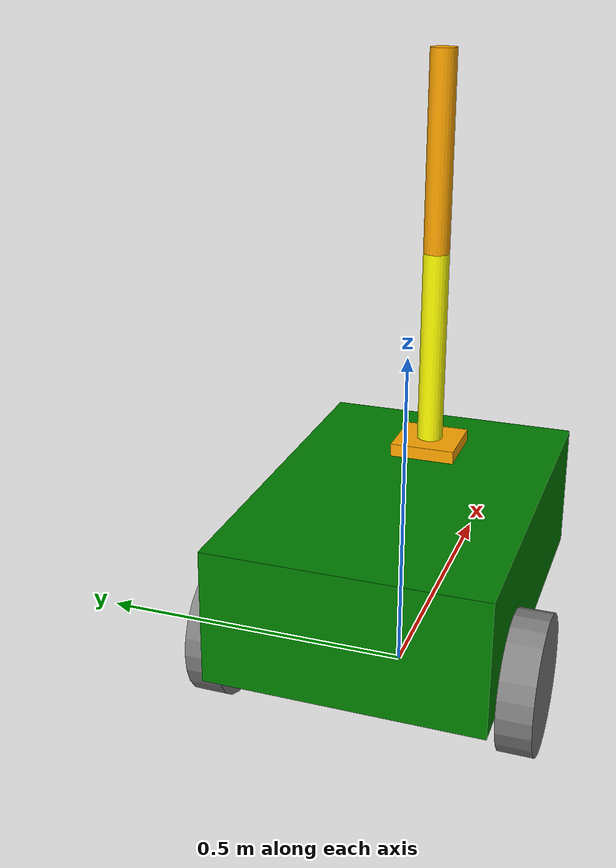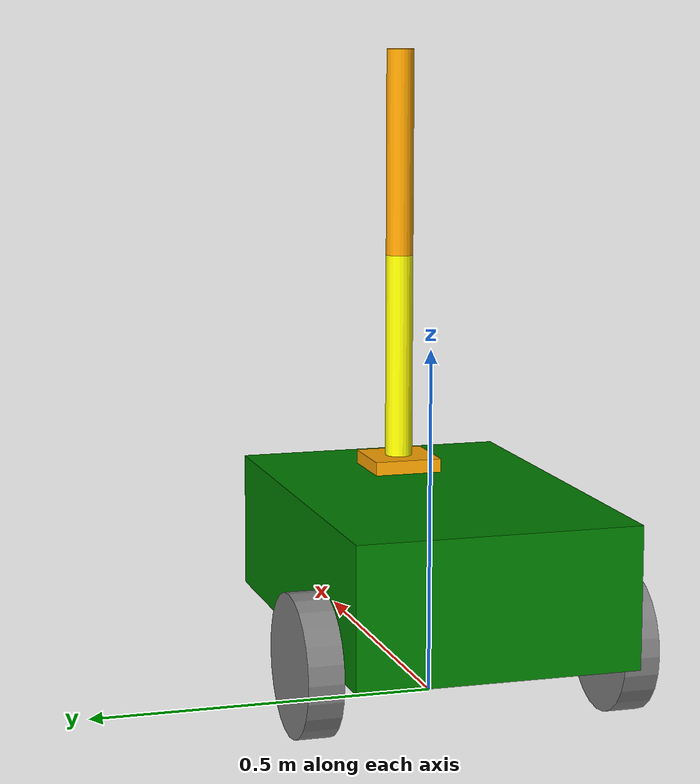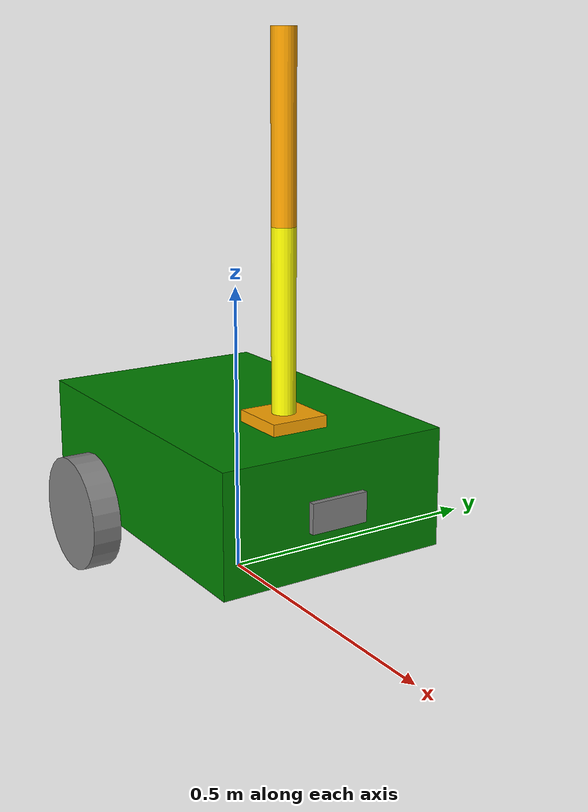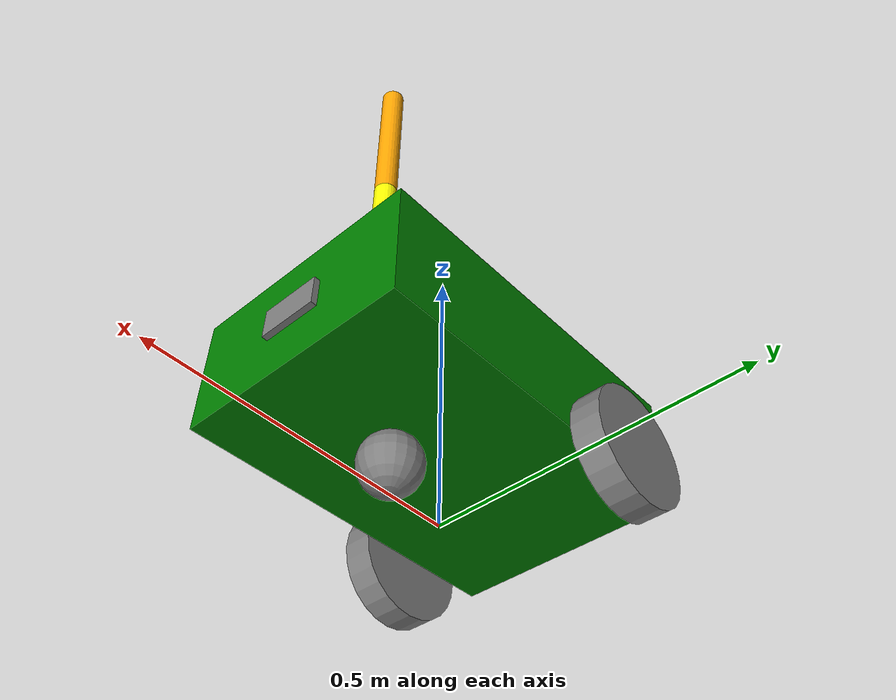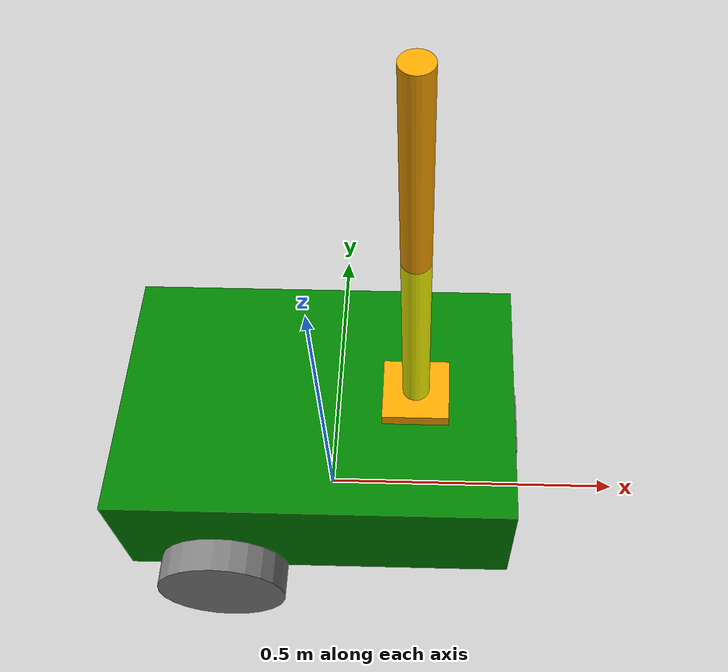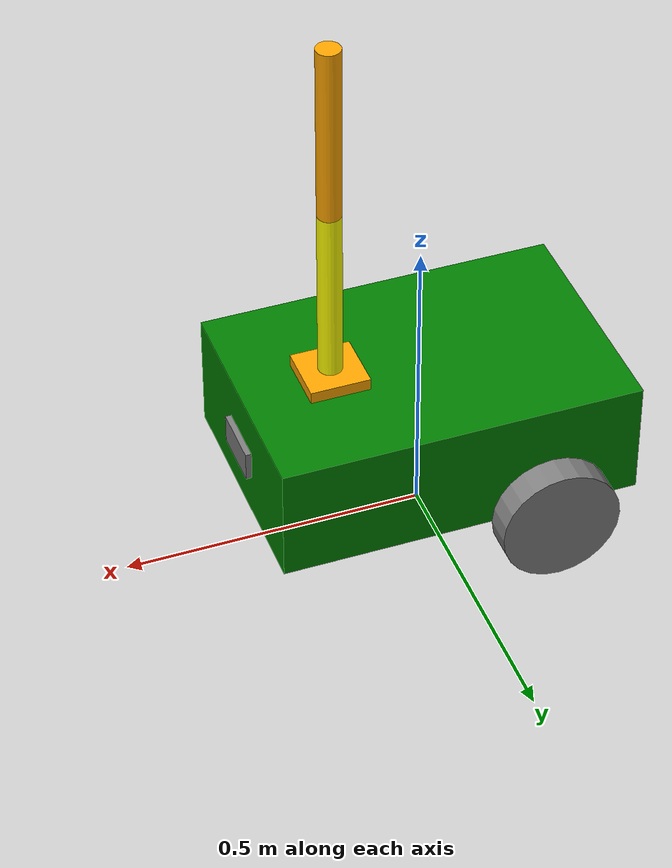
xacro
<?xml version="1.0"?>
<robot name="Solo_wrld" xmlns:xacro="http://www.ros.org/wiki/xacro">

    <xacro:include filename="common_properties.xacro"/>
    <xacro:include filename="mobile_base.xacro"/>
    <xacro:include filename="mobile_base_gz.xacro"/>
    <xacro:include filename="robotic_arm.xacro"/>
    <xacro:include filename="arm_gz.xacro"/>
    <xacro:include filename="camera.xacro"/>

    <joint name="mobile_base_arm_joint" type="fixed">
        <parent link="base_link"/>
        <child link="base"/>
        <origin xyz="${base_length/4.0} 0 0.2" rpy="0 0 0"/>
    </joint>

</robot>

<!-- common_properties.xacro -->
<robot xmlns:xacro="http://www.ros.org/wiki/xacro">

    <xacro:property name="base_length" value="0.6" />
    <xacro:property name="radius" value="0.1" />
    <xacro:property name="length" value="0.05" />

    <material name="green">
        <color rgba="0 0.5 0 1" />
    </material>
    <material name="grey">
        <color rgba="0.5 0.5 0.5 1"/>
    </material>
    <material name="blue">
        <color rgba="0 0 1 1"/>
    </material>

    <xacro:macro name="box_inertia" params="m x y z o_xyz o_rpy">
        <inertial>
            <mass value="${m}"/>
            <origin xyz="${o_xyz}" rpy="${o_rpy}"/>
            <inertia ixx="${(m/12) * (y*y + z*z)}" ixy="0" ixz="0"
                     iyy="${(m/12) * (x*x + z*z)}" iyz="0"
                     izz="${(m/12) * (y*y + x*x)}"/>
        </inertial>
    </xacro:macro>

    <xacro:macro name="wheel_inertia" params="m r h o_xyz o_rpy">
        <inertial>
            <mass value="${m}"/>
            <origin xyz="${o_xyz}" rpy="${o_rpy}"/>
            <inertia ixx="${(m/12)*(3*r*r+h*h)}" ixy="0" ixz="0"
                     iyy="${(m/12)*(3*r*r+h*h)}" iyz="0"
                     izz="${(m/2)*r*r}" />
        </inertial>
    </xacro:macro>

    <xacro:macro name="sphere_inertia" params="m r o_xyz o_rpy">
        <inertial>
            <mass value="${m}"/>
            <origin xyz="${o_xyz}" rpy="${o_rpy}"/>
            <inertia ixx="${(2*m/5)*r*r}" ixy="0" ixz="0"
                     iyy="${(2*m/5)*r*r}" iyz="0"
                     izz="${(2*m/5)*r*r}"/>
        </inertial>
    </xacro:macro>

</robot>

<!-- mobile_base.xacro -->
<robot xmlns:xacro="http://www.ros.org/wiki/xacro">

<xacro:macro name="wheel_link" params="prefix">
        <link name="${prefix}_link">
            <visual>
                <geometry>
                    <cylinder radius="${radius}" length="${length}"/>
                </geometry>
                <origin xyz="0 0 0" rpy="${pi/ 2.0} 0 0"/>
                <material name="grey"/>
            </visual>
            <collision>
                <geometry>
                    <sphere radius="${radius}" />
                </geometry>
                <origin xyz="0 0 0" rpy="${pi/ 2.0} 0 0"/>
            </collision>
            <xacro:wheel_inertia m="1.0" r="${radius}" h="${length}"
                                 o_xyz="0 0 0" o_rpy="${pi/ 2.0} 0 0"/>
        </link>
    </xacro:macro>
    <link name="base_footprint"/>
    <link name="base_link">
        <visual>
            <geometry>
                <box size="${base_length} 0.4 0.2"/>
            </geometry>
            <origin xyz="0 0 0.1" rpy="0 0 0"/>
            <material name="green"/>
        </visual>
        <collision>
            <geometry>
                <box size="${base_length} 0.4 0.2"/>
            </geometry>
            <origin xyz="0 0 0.1" rpy="0 0 0"/>
        </collision>
        <xacro:box_inertia m="5.0" x="${base_length}" y="0.4" z="0.2"
                            o_xyz="0 0 0.1" o_rpy="0 0 0"/>
    </link>
    <xacro:wheel_link prefix="second"/>
    <xacro:wheel_link prefix="third"/>
    <link name="fourth_link">
        <visual>
            <geometry>
            <sphere radius="0.05" />
            </geometry>
            <origin xyz="0 0 0" rpy="0 0 0"/>
            <material name="grey"/>
        </visual>
        <collision>
            <geometry>
            <sphere radius="0.05" />
            </geometry>
            <origin xyz="0 0 0" rpy="0 0 0"/>
        </collision>
        <xacro:sphere_inertia m="0.5" r="0.05" o_xyz="0 0 0" o_rpy="0 0 0"/>
    </link>
    <joint name="bf_bl_joint" type="fixed">
        <parent link="base_footprint"/>
        <child link="base_link"/>
        <origin xyz="0 0 0.1" rpy="0 0 0"/>
    </joint>
    <joint name="base_second_joint" type="continuous">
        <parent link="base_link"/>
        <child link="second_link"/>
        <origin xyz="${-base_length/4} -0.225 0" rpy="0 0 0"/>
        <axis xyz="0 1 0" />
    </joint>
    <joint name="base_third_joint" type="continuous">
        <parent link="base_link"/>
        <child link="third_link"/>
        <origin xyz="${-base_length/4} 0.225 0" rpy="0 0 0"/>
        <axis xyz="0 1 0"/>
    </joint>
    <joint name="base_fourth_joint" type="fixed">
        <parent link="base_link"/>
        <child link="fourth_link"/>
        <origin xyz="${base_length/6} 0 -0.05" rpy="0 0 0"/>

    </joint>

</robot>

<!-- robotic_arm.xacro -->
<robot name="Solo_wrld" xmlns:xacro="http://www.ros.org/wiki/xacro">

    <xacro:include filename="arm_gz.xacro"/>

    <xacro:property name="base_l" value="0.1"/>
    <xacro:property name="base_b" value="0.1"/>
    <xacro:property name="base_h" value="0.02"/>
    <xacro:property name="fore_r" value="0.02"/>
    <xacro:property name="fore_l" value="0.3"/>

    <xacro:macro name="box_inertia" params="m x y z o_xyz o_rpy">
        <inertial>
            <mass value="${m}"/>
            <origin xyz="${o_xyz}" rpy="${o_rpy}"/>
            <inertia ixx="${m/12* (y*y+z*z)}" ixy="0" ixz="0"
                     iyy="${m/12* (x*x+z*z)}" iyz="0"
                     izz="${m/12* (y*y+x*x)}"/>
        </inertial>
    </xacro:macro>

    <xacro:macro name="cylinder_inertia" params="m r h o_xyz o_rpy">
        <inertial>
            <mass value="${m}"/>
            <origin xyz="${o_xyz}" rpy="${o_rpy}"/>
            <inertia ixx="${m/12*(3*r*r+h*h)}" ixy="0" ixz="0"
                     iyy="${m/12*(3*r*r+h*h)}" iyz="0"
                     izz="${m/12*(3*r*r+h*h)}"/>
        </inertial>
    </xacro:macro>

    <material name="orange">
        <color rgba="1 0.65 0 1"/>
    </material>

    <material name="yellow">
        <color rgba="1 1 0 1"/>
    </material>

    <link name="base">
        <visual>
            <geometry>
                <box size="${base_l} ${base_b} ${base_h}"/>
            </geometry>
            <origin xyz="0 0 ${base_h/2.0}" rpy="0 0 0"/>
            <material name="orange"/>
        </visual>
        <collision>
            <geometry>
                <box size="${base_l} ${base_b} ${base_h}"/>
            </geometry>
            <origin xyz="0 0 ${base_h/2.0}" rpy="0 0 0"/>
        </collision>
        <xacro:box_inertia m="5.0" x="${base_l}" y="${base_b}" z="${base_h}"
                           o_xyz="0 0 ${base_h/2.0}" o_rpy="0 0 0"/>
    </link>

    <link name="fore_arm">
        <visual>
            <geometry>
                <cylinder radius="${fore_r}" length="${fore_l}"/>
            </geometry>
            <origin xyz="0 0 ${fore_l/2.0}" rpy="0 0 0"/>
            <material name="yellow"/>
        </visual>
        <collision>
            <geometry>r
                <cylinder radius="${fore_r}" length="${fore_l}"/>
            </geometry>
            <origin xyz="0 0 ${fore_l/2.0}" rpy="0 0 0"/>
        </collision>
        <xacro:cylinder_inertia m="0.3" r="${fore_r}" h="${fore_l}"
                                o_xyz="0 0 ${fore_l/2.0}" o_rpy="0 0 0"/>
    </link>

    <link name="hand_link">
        <visual>
            <geometry>
                <cylinder radius="${fore_r}" length="${fore_l}"/>
            </geometry>
            <origin xyz="0 0 ${fore_l/2.0}" rpy="0 0 0"/>
            <material name="orange"/>
        </visual>
        <collision>
            <geometry>
                <cylinder radius="${fore_r}" length="${fore_l}"/>
            </geometry>
            <origin xyz="0 0 ${fore_l/2.0}" rpy="0 0 0"/>
        </collision>
        <xacro:cylinder_inertia m="0.3" r="${fore_r}" h="${fore_l}"
                                o_xyz="0 0 ${fore_l/2.0}" o_rpy="0 0 0"/>
    </link>

    <joint name="base_fore_joint" type="revolute">
        <parent link="base"/>
        <child link="fore_arm"/>
        <origin xyz="0 0 ${base_h}" rpy="0 0 0"/>
        <axis xyz="1 0 0"/>
        <limit lower="0" upper="${pi/2.0}" effort="100" velocity="100"/>
        <dynamics friction="0.3" damping="0.3" />
    </joint>

    <joint name="fore_hand_joint" type="revolute">
        <parent link="fore_arm"/>
        <child link="hand_link"/>
        <origin xyz="0 0 ${fore_l}" rpy="0 0 0"/>
        <axis xyz="1 0 0"/>
        <limit lower="0" upper="${pi/2.0}" effort="100" velocity="100"/>
        <dynamics friction="0.3" damping="0.3" />
    </joint>

</robot>

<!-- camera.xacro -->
<robot xmlns:xacro="http://www.ros.org/wiki/xacro">

    <xacro:property name="camera_link_l" value="0.01"/>
    <xacro:property name="camera_link_b" value="0.1"/>
    <xacro:property name="camera_link_h" value="0.05"/>

    <link name="camera_link">
        <visual>
            <geometry>
                <box size="${camera_link_l} ${camera_link_b} ${camera_link_h}"/>
            </geometry>
            <material name="grey"/>
            <origin xyz="0 0 0" rpy="0 0 0"/>
        </visual>
        <collision>
            <geometry>
                <box size="${camera_link_l} ${camera_link_b} ${camera_link_h}"/>
            </geometry>
        </collision>
        <xacro:box_inertia m="0.1" x="${camera_link_l}" y="${camera_link_b}" z="${camera_link_h}"
                           o_xyz="0 0 0" o_rpy="0 0 0"/>
    </link>

    <joint name="base_camera_joint" type="fixed">
        <parent link="base_link"/>
        <child link="camera_link"/>
        <origin xyz="${base_length/2.0+camera_link_l/2.0} 0 0.1" rpy="0 0 0"/>
    </joint>

    <link name="camera_link_optical"/>

    <joint name="camera_optical_joint" type="fixed">
      <origin xyz="0 0 0" rpy="${-pi/2.0} 0 ${-pi/2.0}"/>
      <parent link="camera_link"/>
      <child link="camera_link_optical"/>
    </joint>

    <gazebo reference="camera_link">
        <sensor name="camera" type="camera">
            <topic>image</topic>
          <update_rate>20</update_rate>
          <always_on>1</always_on>
          <visualize>true</visualize>
          <camera>
            <optical_frame_id>camera_link_optical</optical_frame_id>
            <camera_info_topic>camera_info</camera_info_topic>
            <horizontal_fov>.75</horizontal_fov>
            <image>
              <width>640</width>
              <height>480</height>
              <format>R8G8B8</format>
            </image>
            <clip>
              <near>0.2</near>
              <far>12.3</far>
            </clip>
            <save enabled='true'>
              <path>/tmp/cam</path>
            </save>
            <noise>
              <type>gaussian</type>
              <mean>0.0</mean>
              <stddev>0.0</stddev>
            </noise>
            <distortion>
              <k1>0.1</k1>
              <k2>0.2</k2>
              <k3>0.3</k3>
              <p1>0.4</p1>
              <p2>0.5</p2>
              <center>0.2 0.4</center>
            </distortion>
            <lens>
              <type>custom</type>
              <scale_to_hfov>false</scale_to_hfov>
              <custom_function>
                <c1>1.1</c1>
                <c2>2.2</c2>
                <c3>3.3</c3>
                <f>1.2</f>
                <fun>sin</fun>
              </custom_function>
              <cutoff_angle>0.7505</cutoff_angle>
              <env_texture_size>128</env_texture_size>
              <intrinsics>
                <fx>280</fx>
                <fy>281</fy>
                <cx>162</cx>
                <cy>124</cy>
                <s>1.2</s>
              </intrinsics>
              <projection>
                <p_fx>282</p_fx>
                <p_fy>283</p_fy>
                <p_cx>163</p_cx>
                <p_cy>125</p_cy>
                <tx>1</tx>
                <ty>2</ty>
              </projection>
            </lens>
          </camera>
        </sensor>
    </gazebo>

</robot>
